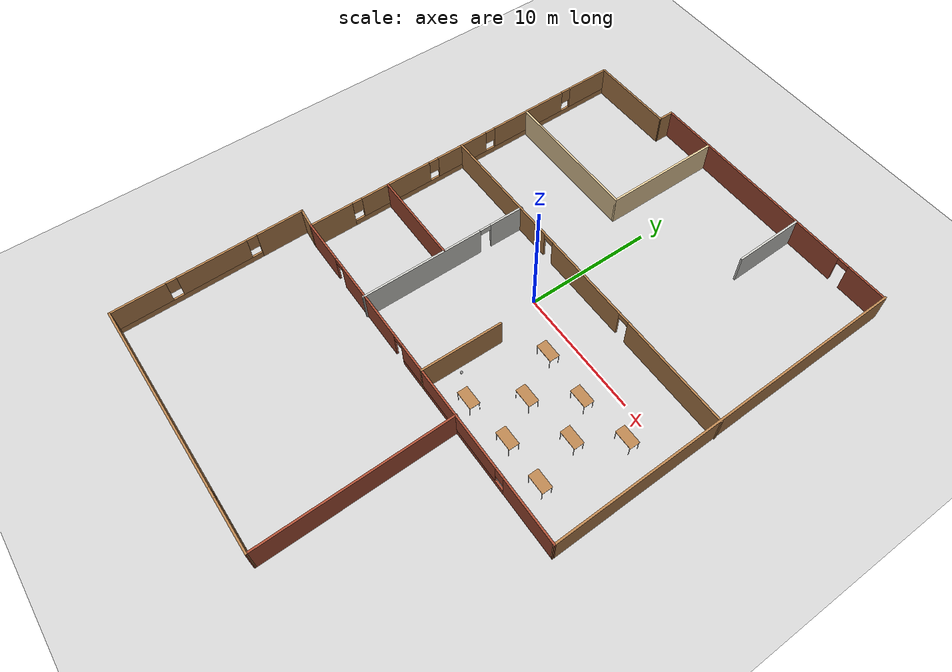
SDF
<sdf version="1.6">
 <world name="default">
  <plugin name="hello" filename="libhello.so"/>
  <light name="sun" type="directional">
   <pose>0 0 10 0 -0 0</pose>
   <diffuse>0.8 0.8 0.8 1</diffuse>
   <specular>0.2 0.2 0.2 1</specular>
   <attenuation>
    <range>1000</range>
    <constant>0.9</constant>
    <linear>0.01</linear>
    <quadratic>0.001</quadratic>
   </attenuation>
   <direction>-0.5 0.1 -0.9</direction>
  </light>
  <model name="ground_plane">
   <static>1</static>
   <link name="link">
    <collision name="collision">
     <geometry><plane><normal>0 0 1</normal><size>100 100</size></plane></geometry>
     <surface>
      <contact><collide_bitmask>65535</collide_bitmask></contact>
      <friction><ode><mu>100</mu><mu2>50</mu2></ode></friction>
     </surface>
    </collision>
    <visual name="visual">
     <cast_shadows>0</cast_shadows>
     <geometry><plane><normal>0 0 1</normal><size>100 100</size></plane></geometry>
     <material>
      <script><uri>file://media/materials/scripts/gazebo.material</uri><name>Gazebo/Grey</name></script>
     </material>
    </visual>
   </link>
  </model>
  <gravity>0 0 -9.8</gravity>
  <magnetic_field>6e-06 2.3e-05 -4.2e-05</magnetic_field>
  <atmosphere type="adiabatic"/>
  <physics name="default_physics" default="0" type="ode">
   <max_step_size>0.001</max_step_size>
   <real_time_factor>1</real_time_factor>
   <real_time_update_rate>1000</real_time_update_rate>
  </physics>
  <scene><ambient>0.4 0.4 0.4 1</ambient><background>0.7 0.7 0.7 1</background><shadows>1</shadows></scene>
  <spherical_coordinates>
   <surface_model>EARTH_WGS84</surface_model>
   <latitude_deg>0</latitude_deg>
   <longitude_deg>0</longitude_deg>
   <elevation>0</elevation>
   <heading_deg>0</heading_deg>
  </spherical_coordinates>
  <model name="myfloor">
   <pose>0.1154 -3.06922 0 0 -0 0</pose>
   <link name="Wall_0">
    <collision name="Wall_0_Collision">
     <geometry><box><size>28.7943 0.15 2.5</size></box></geometry>
     <pose>0 0 1.25 0 -0 0</pose>
    </collision>
    <visual name="Wall_0_Visual">
     <pose>0 0 1.25 0 -0 0</pose>
     <geometry><box><size>28.7943 0.15 2.5</size></box></geometry>
     <material>
      <script><uri>file://media/materials/scripts/gazebo.material</uri><name>Gazebo/Wood</name></script>
      <ambient>1 1 1 1</ambient>
     </material>
     <meta><layer>0</layer></meta>
    </visual>
    <pose>14.9022 7.37878 0 0 -0 -1.55943</pose>
   </link>
   <link name="Wall_1">
    <pose>0.784435 -6.98313 0 0 -0 -3.13874</pose>
    <visual name="Wall_1_Visual_0">
     <pose>-11.8346 0 1.25 0 -0 0</pose>
     <geometry><box><size>5.04202 0.15 2.5</size></box></geometry>
     <material>
      <script><uri>file://media/materials/scripts/gazebo.material</uri><name>Gazebo/Bricks</name></script>
      <ambient>1 1 1 1</ambient>
     </material>
     <meta><layer>0</layer></meta>
    </visual>
    <collision name="Wall_1_Collision_0">
     <geometry><box><size>5.04202 0.15 2.5</size></box></geometry>
     <pose>-11.8346 0 1.25 0 -0 0</pose>
    </collision>
    <visual name="Wall_1_Visual_1">
     <pose>6.38807 0 1.25 0 -0 0</pose>
     <geometry><box><size>6.80433 0.15 2.5</size></box></geometry>
     <material>
      <script><uri>file://media/materials/scripts/gazebo.material</uri><name>Gazebo/Bricks</name></script>
      <ambient>1 1 1 1</ambient>
     </material>
     <meta><layer>0</layer></meta>
    </visual>
    <collision name="Wall_1_Collision_1">
     <geometry><box><size>6.80433 0.15 2.5</size></box></geometry>
     <pose>6.38807 0 1.25 0 -0 0</pose>
    </collision>
    <visual name="Wall_1_Visual_2">
     <pose>12.5229 0 1.25 0 -0 0</pose>
     <geometry><box><size>3.66537 0.15 2.5</size></box></geometry>
     <material>
      <script><uri>file://media/materials/scripts/gazebo.material</uri><name>Gazebo/Bricks</name></script>
      <ambient>1 1 1 1</ambient>
     </material>
     <meta><layer>0</layer></meta>
    </visual>
    <collision name="Wall_1_Collision_2">
     <geometry><box><size>3.66537 0.15 2.5</size></box></geometry>
     <pose>12.5229 0 1.25 0 -0 0</pose>
    </collision>
    <visual name="Wall_1_Visual_3">
     <pose>-3.61384 0 0.25 0 -0 0</pose>
     <geometry><box><size>11.3995 0.15 0.5</size></box></geometry>
     <material>
      <script><uri>file://media/materials/scripts/gazebo.material</uri><name>Gazebo/Bricks</name></script>
      <ambient>1 1 1 1</ambient>
     </material>
     <meta><layer>0</layer></meta>
    </visual>
    <collision name="Wall_1_Collision_3">
     <geometry><box><size>11.3995 0.15 0.5</size></box></geometry>
     <pose>-3.61384 0 0.25 0 -0 0</pose>
    </collision>
    <visual name="Wall_1_Visual_4">
     <pose>-3.21384 0 1.5 0 -0 0</pose>
     <geometry><box><size>10.5995 0.15 2</size></box></geometry>
     <material>
      <script><uri>file://media/materials/scripts/gazebo.material</uri><name>Gazebo/Bricks</name></script>
      <ambient>1 1 1 1</ambient>
     </material>
     <meta><layer>0</layer></meta>
    </visual>
    <collision name="Wall_1_Collision_4">
     <geometry><box><size>10.5995 0.15 2</size></box></geometry>
     <pose>-3.21384 0 1.5 0 -0 0</pose>
    </collision>
    <visual name="Wall_1_Visual_5">
     <pose>-8.91358 0 1.9 0 -0 0</pose>
     <geometry><box><size>0.8 0.15 1.2</size></box></geometry>
     <material>
      <script><uri>file://media/materials/scripts/gazebo.material</uri><name>Gazebo/Bricks</name></script>
      <ambient>1 1 1 1</ambient>
     </material>
     <meta><layer>0</layer></meta>
    </visual>
    <collision name="Wall_1_Collision_5">
     <geometry><box><size>0.8 0.15 1.2</size></box></geometry>
     <pose>-8.91358 0 1.9 0 -0 0</pose>
    </collision>
    <visual name="Wall_1_Visual_6">
     <pose>10.2402 0 2.25 0 -0 0</pose>
     <geometry><box><size>0.9 0.15 0.5</size></box></geometry>
     <material>
      <script><uri>file://media/materials/scripts/gazebo.material</uri><name>Gazebo/Bricks</name></script>
      <ambient>1 1 1 1</ambient>
     </material>
     <meta><layer>0</layer></meta>
    </visual>
    <collision name="Wall_1_Collision_6">
     <geometry><box><size>0.9 0.15 0.5</size></box></geometry>
     <pose>10.2402 0 2.25 0 -0 0</pose>
    </collision>
    <visual name="Wall_1_Visual_7">
     <pose>2.53591 0 2.25 0 -0 0</pose>
     <geometry><box><size>0.9 0.15 0.5</size></box></geometry>
     <material>
      <script><uri>file://media/materials/scripts/gazebo.material</uri><name>Gazebo/Bricks</name></script>
      <ambient>1 1 1 1</ambient>
     </material>
     <meta><layer>0</layer></meta>
    </visual>
    <collision name="Wall_1_Collision_7">
     <geometry><box><size>0.9 0.15 0.5</size></box></geometry>
     <pose>2.53591 0 2.25 0 -0 0</pose>
    </collision>
   </link>
   <link name="Wall_11">
    <collision name="Wall_11_Collision">
     <geometry><box><size>1.71929 0.15 2.5</size></box></geometry>
     <pose>0 0 1.25 0 -0 0</pose>
    </collision>
    <visual name="Wall_11_Visual">
     <pose>0 0 1.25 0 -0 0</pose>
     <geometry><box><size>1.71929 0.15 2.5</size></box></geometry>
     <material>
      <script><uri>file://media/materials/scripts/gazebo.material</uri><name>Gazebo/Wood</name></script>
      <ambient>1 1 1 1</ambient>
     </material>
     <meta><layer>0</layer></meta>
    </visual>
    <pose>-14.2779 -6.95718 0 0 -0 3.05657</pose>
   </link>
   <link name="Wall_12">
    <pose>-14.9328 -14.2951 0 0 -0 -1.55366</pose>
    <visual name="Wall_12_Visual_0">
     <pose>-5.5888 0 1.25 0 -0 0</pose>
     <geometry><box><size>3.78362 0.15 2.5</size></box></geometry>
     <material>
      <script><uri>file://media/materials/scripts/gazebo.material</uri><name>Gazebo/Wood</name></script>
      <ambient>1 1 1 1</ambient>
     </material>
     <meta><layer>0</layer></meta>
    </visual>
    <collision name="Wall_12_Collision_0">
     <geometry><box><size>3.78362 0.15 2.5</size></box></geometry>
     <pose>-5.5888 0 1.25 0 -0 0</pose>
    </collision>
    <visual name="Wall_12_Visual_1">
     <pose>1.89181 0 0.25 0 -0 0</pose>
     <geometry><box><size>11.1776 0.15 0.5</size></box></geometry>
     <material>
      <script><uri>file://media/materials/scripts/gazebo.material</uri><name>Gazebo/Wood</name></script>
      <ambient>1 1 1 1</ambient>
     </material>
     <meta><layer>0</layer></meta>
    </visual>
    <collision name="Wall_12_Collision_1">
     <geometry><box><size>11.1776 0.15 0.5</size></box></geometry>
     <pose>1.89181 0 0.25 0 -0 0</pose>
    </collision>
    <visual name="Wall_12_Visual_2">
     <pose>-0.192467 0 1.5 0 -0 0</pose>
     <geometry><box><size>5.40905 0.15 2</size></box></geometry>
     <material>
      <script><uri>file://media/materials/scripts/gazebo.material</uri><name>Gazebo/Wood</name></script>
      <ambient>1 1 1 1</ambient>
     </material>
     <meta><layer>0</layer></meta>
    </visual>
    <collision name="Wall_12_Collision_2">
     <geometry><box><size>5.40905 0.15 2</size></box></geometry>
     <pose>-0.192467 0 1.5 0 -0 0</pose>
    </collision>
    <visual name="Wall_12_Visual_3">
     <pose>5.39633 0 1.5 0 -0 0</pose>
     <geometry><box><size>4.16855 0.15 2</size></box></geometry>
     <material>
      <script><uri>file://media/materials/scripts/gazebo.material</uri><name>Gazebo/Wood</name></script>
      <ambient>1 1 1 1</ambient>
     </material>
     <meta><layer>0</layer></meta>
    </visual>
    <collision name="Wall_12_Collision_3">
     <geometry><box><size>4.16855 0.15 2</size></box></geometry>
     <pose>5.39633 0 1.5 0 -0 0</pose>
    </collision>
    <visual name="Wall_12_Visual_4">
     <pose>-3.29699 0 1.9 0 -0 0</pose>
     <geometry><box><size>0.8 0.15 1.2</size></box></geometry>
     <material>
      <script><uri>file://media/materials/scripts/gazebo.material</uri><name>Gazebo/Wood</name></script>
      <ambient>1 1 1 1</ambient>
     </material>
     <meta><layer>0</layer></meta>
    </visual>
    <collision name="Wall_12_Collision_4">
     <geometry><box><size>0.8 0.15 1.2</size></box></geometry>
     <pose>-3.29699 0 1.9 0 -0 0</pose>
    </collision>
    <visual name="Wall_12_Visual_5">
     <pose>2.91206 0 1.9 0 -0 0</pose>
     <geometry><box><size>0.8 0.15 1.2</size></box></geometry>
     <material>
      <script><uri>file://media/materials/scripts/gazebo.material</uri><name>Gazebo/Wood</name></script>
      <ambient>1 1 1 1</ambient>
     </material>
     <meta><layer>0</layer></meta>
    </visual>
    <collision name="Wall_12_Collision_5">
     <geometry><box><size>0.8 0.15 1.2</size></box></geometry>
     <pose>2.91206 0 1.9 0 -0 0</pose>
    </collision>
   </link>
   <link name="Wall_13">
    <pose>-4.80096 -21.6461 0 0 -0 0.005348</pose>
    <visual name="Wall_13_Visual_0">
     <pose>-2.48429 0 1.25 0 -0 0</pose>
     <geometry><box><size>15.1916 0.15 2.5</size></box></geometry>
     <material>
      <script><uri>file://media/materials/scripts/gazebo.material</uri><name>Gazebo/Wood</name></script>
      <ambient>1 1 1 1</ambient>
     </material>
     <meta><layer>0</layer></meta>
    </visual>
    <collision name="Wall_13_Collision_0">
     <geometry><box><size>15.1916 0.15 2.5</size></box></geometry>
     <pose>-2.48429 0 1.25 0 -0 0</pose>
    </collision>
    <visual name="Wall_13_Visual_1">
     <pose>7.59582 0 0.25 0 -0 0</pose>
     <geometry><box><size>4.96857 0.15 0.5</size></box></geometry>
     <material>
      <script><uri>file://media/materials/scripts/gazebo.material</uri><name>Gazebo/Wood</name></script>
      <ambient>1 1 1 1</ambient>
     </material>
     <meta><layer>0</layer></meta>
    </visual>
    <collision name="Wall_13_Collision_1">
     <geometry><box><size>4.96857 0.15 0.5</size></box></geometry>
     <pose>7.59582 0 0.25 0 -0 0</pose>
    </collision>
    <visual name="Wall_13_Visual_2">
     <pose>7.99582 0 1.5 0 -0 0</pose>
     <geometry><box><size>4.16857 0.15 2</size></box></geometry>
     <material>
      <script><uri>file://media/materials/scripts/gazebo.material</uri><name>Gazebo/Wood</name></script>
      <ambient>1 1 1 1</ambient>
     </material>
     <meta><layer>0</layer></meta>
    </visual>
    <collision name="Wall_13_Collision_2">
     <geometry><box><size>4.16857 0.15 2</size></box></geometry>
     <pose>7.99582 0 1.5 0 -0 0</pose>
    </collision>
    <visual name="Wall_13_Visual_3">
     <pose>5.51154 0 1.9 0 -0 0</pose>
     <geometry><box><size>0.8 0.15 1.2</size></box></geometry>
     <material>
      <script><uri>file://media/materials/scripts/gazebo.material</uri><name>Gazebo/Wood</name></script>
      <ambient>1 1 1 1</ambient>
     </material>
     <meta><layer>0</layer></meta>
    </visual>
    <collision name="Wall_13_Collision_3">
     <geometry><box><size>0.8 0.15 1.2</size></box></geometry>
     <pose>5.51154 0 1.9 0 -0 0</pose>
    </collision>
   </link>
   <link name="Wall_14">
    <collision name="Wall_14_Collision">
     <geometry><box><size>14.8112 0.15 2.5</size></box></geometry>
     <pose>0 0 1.25 0 -0 0</pose>
    </collision>
    <visual name="Wall_14_Visual">
     <pose>0 0 1.25 0 -0 0</pose>
     <geometry><box><size>14.8112 0.15 2.5</size></box></geometry>
     <material>
      <script><uri>file://media/materials/scripts/gazebo.material</uri><name>Gazebo/Bricks</name></script>
      <ambient>1 1 1 1</ambient>
     </material>
     <meta><layer>0</layer></meta>
    </visual>
    <pose>5.097 -14.2627 0 0 -0 1.58539</pose>
   </link>
   <link name="Wall_16">
    <collision name="Wall_16_Collision">
     <geometry><box><size>7.64035 0.15 2.5</size></box></geometry>
     <pose>0 0 1.25 0 -0 0</pose>
    </collision>
    <visual name="Wall_16_Visual">
     <pose>0 0 1.25 0 -0 0</pose>
     <geometry><box><size>7.64035 0.15 2.5</size></box></geometry>
     <material>
      <script><uri>file://media/materials/scripts/gazebo.material</uri><name>Gazebo/Bricks</name></script>
      <ambient>1 1 1 1</ambient>
     </material>
     <meta><layer>0</layer></meta>
    </visual>
    <pose>-9.77669 -0.512597 0 0 -0 0</pose>
   </link>
   <link name="Wall_18">
    <collision name="Wall_18_Collision">
     <geometry><box><size>5.6083 0.15 2.5</size></box></geometry>
     <pose>0 0 1.25 0 -0 0</pose>
    </collision>
    <visual name="Wall_18_Visual">
     <pose>0 0 1.25 0 -0 0</pose>
     <geometry><box><size>5.6083 0.15 2.5</size></box></geometry>
     <material>
      <script><uri>file://media/materials/scripts/gazebo.material</uri><name>Gazebo/CeilingTiled</name></script>
      <ambient>1 1 1 1</ambient>
     </material>
     <meta><layer>0</layer></meta>
    </visual>
    <pose>6.64857 18.8018 0 0 -0 -1.55119</pose>
   </link>
   <link name="Wall_2">
    <pose>-13.5775 6.64645 0 0 -0 1.57675</pose>
    <visual name="Wall_2_Visual_0">
     <pose>-11.9896 0 1.25 0 -0 0</pose>
     <geometry><box><size>3.51181 0.15 2.5</size></box></geometry>
     <material>
      <script><uri>file://media/materials/scripts/gazebo.material</uri><name>Gazebo/Wood</name></script>
      <ambient>1 1 1 1</ambient>
     </material>
     <meta><layer>0</layer></meta>
    </visual>
    <collision name="Wall_2_Collision_0">
     <geometry><box><size>3.51181 0.15 2.5</size></box></geometry>
     <pose>-11.9896 0 1.25 0 -0 0</pose>
    </collision>
    <visual name="Wall_2_Visual_1">
     <pose>1.75591 0 0.25 0 -0 0</pose>
     <geometry><box><size>23.9792 0.15 0.5</size></box></geometry>
     <material>
      <script><uri>file://media/materials/scripts/gazebo.material</uri><name>Gazebo/Wood</name></script>
      <ambient>1 1 1 1</ambient>
     </material>
     <meta><layer>0</layer></meta>
    </visual>
    <collision name="Wall_2_Collision_1">
     <geometry><box><size>23.9792 0.15 0.5</size></box></geometry>
     <pose>1.75591 0 0.25 0 -0 0</pose>
    </collision>
    <visual name="Wall_2_Visual_2">
     <pose>-6.46373 0 1.5 0 -0 0</pose>
     <geometry><box><size>5.93992 0.15 2</size></box></geometry>
     <material>
      <script><uri>file://media/materials/scripts/gazebo.material</uri><name>Gazebo/Wood</name></script>
      <ambient>1 1 1 1</ambient>
     </material>
     <meta><layer>0</layer></meta>
    </visual>
    <collision name="Wall_2_Collision_2">
     <geometry><box><size>5.93992 0.15 2</size></box></geometry>
     <pose>-6.46373 0 1.5 0 -0 0</pose>
    </collision>
    <visual name="Wall_2_Visual_3">
     <pose>-0.471555 0 1.5 0 -0 0</pose>
     <geometry><box><size>4.44443 0.15 2</size></box></geometry>
     <material>
      <script><uri>file://media/materials/scripts/gazebo.material</uri><name>Gazebo/Wood</name></script>
      <ambient>1 1 1 1</ambient>
     </material>
     <meta><layer>0</layer></meta>
    </visual>
    <collision name="Wall_2_Collision_3">
     <geometry><box><size>4.44443 0.15 2</size></box></geometry>
     <pose>-0.471555 0 1.5 0 -0 0</pose>
    </collision>
    <visual name="Wall_2_Visual_4">
     <pose>5.8964 0 1.5 0 -0 0</pose>
     <geometry><box><size>6.69149 0.15 2</size></box></geometry>
     <material>
      <script><uri>file://media/materials/scripts/gazebo.material</uri><name>Gazebo/Wood</name></script>
      <ambient>1 1 1 1</ambient>
     </material>
     <meta><layer>0</layer></meta>
    </visual>
    <collision name="Wall_2_Collision_4">
     <geometry><box><size>6.69149 0.15 2</size></box></geometry>
     <pose>5.8964 0 1.5 0 -0 0</pose>
    </collision>
    <visual name="Wall_2_Visual_5">
     <pose>11.8938 0 1.5 0 -0 0</pose>
     <geometry><box><size>3.70336 0.15 2</size></box></geometry>
     <material>
      <script><uri>file://media/materials/scripts/gazebo.material</uri><name>Gazebo/Wood</name></script>
      <ambient>1 1 1 1</ambient>
     </material>
     <meta><layer>0</layer></meta>
    </visual>
    <collision name="Wall_2_Collision_5">
     <geometry><box><size>3.70336 0.15 2</size></box></geometry>
     <pose>11.8938 0 1.5 0 -0 0</pose>
    </collision>
    <visual name="Wall_2_Visual_6">
     <pose>-9.83369 0 1.9 0 -0 0</pose>
     <geometry><box><size>0.8 0.15 1.2</size></box></geometry>
     <material>
      <script><uri>file://media/materials/scripts/gazebo.material</uri><name>Gazebo/Wood</name></script>
      <ambient>1 1 1 1</ambient>
     </material>
     <meta><layer>0</layer></meta>
    </visual>
    <collision name="Wall_2_Collision_6">
     <geometry><box><size>0.8 0.15 1.2</size></box></geometry>
     <pose>-9.83369 0 1.9 0 -0 0</pose>
    </collision>
    <visual name="Wall_2_Visual_7">
     <pose>-3.09377 0 1.9 0 -0 0</pose>
     <geometry><box><size>0.8 0.15 1.2</size></box></geometry>
     <material>
      <script><uri>file://media/materials/scripts/gazebo.material</uri><name>Gazebo/Wood</name></script>
      <ambient>1 1 1 1</ambient>
     </material>
     <meta><layer>0</layer></meta>
    </visual>
    <collision name="Wall_2_Collision_7">
     <geometry><box><size>0.8 0.15 1.2</size></box></geometry>
     <pose>-3.09377 0 1.9 0 -0 0</pose>
    </collision>
    <visual name="Wall_2_Visual_8">
     <pose>2.15066 0 1.9 0 -0 0</pose>
     <geometry><box><size>0.8 0.15 1.2</size></box></geometry>
     <material>
      <script><uri>file://media/materials/scripts/gazebo.material</uri><name>Gazebo/Wood</name></script>
      <ambient>1 1 1 1</ambient>
     </material>
     <meta><layer>0</layer></meta>
    </visual>
    <collision name="Wall_2_Collision_8">
     <geometry><box><size>0.8 0.15 1.2</size></box></geometry>
     <pose>2.15066 0 1.9 0 -0 0</pose>
    </collision>
    <visual name="Wall_2_Visual_9">
     <pose>9.64215 0 1.9 0 -0 0</pose>
     <geometry><box><size>0.8 0.15 1.2</size></box></geometry>
     <material>
      <script><uri>file://media/materials/scripts/gazebo.material</uri><name>Gazebo/Wood</name></script>
      <ambient>1 1 1 1</ambient>
     </material>
     <meta><layer>0</layer></meta>
    </visual>
    <collision name="Wall_2_Collision_9">
     <geometry><box><size>0.8 0.15 1.2</size></box></geometry>
     <pose>9.64215 0 1.9 0 -0 0</pose>
    </collision>
   </link>
   <link name="Wall_21">
    <collision name="Wall_21_Collision">
     <geometry><box><size>11.25 0.15 2.5</size></box></geometry>
     <pose>0 0 1.25 0 -0 0</pose>
    </collision>
    <visual name="Wall_21_Visual">
     <pose>0 0 1.25 0 -0 0</pose>
     <geometry><box><size>11.25 0.15 2.5</size></box></geometry>
     <material>
      <script><uri>file://media/materials/scripts/gazebo.material</uri><name>Gazebo/Grey</name></script>
      <ambient>0.921569 0.807843 0.615686 1</ambient>
     </material>
     <meta><layer>0</layer></meta>
    </visual>
    <pose>-8.07887 12.328 0 0 -0 0</pose>
   </link>
   <link name="Wall_22">
    <collision name="Wall_22_Collision">
     <geometry><box><size>9.25 0.15 2.5</size></box></geometry>
     <pose>0 0 1.25 0 -0 0</pose>
    </collision>
    <visual name="Wall_22_Visual">
     <pose>0 0 1.25 0 -0 0</pose>
     <geometry><box><size>9.25 0.15 2.5</size></box></geometry>
     <material>
      <script><uri>file://media/materials/scripts/gazebo.material</uri><name>Gazebo/Grey</name></script>
      <ambient>0.921569 0.807843 0.615686 1</ambient>
     </material>
     <meta><layer>0</layer></meta>
    </visual>
    <pose>-2.52887 16.878 0 0 -0 1.5708</pose>
   </link>
   <link name="Wall_25">
    <collision name="Wall_25_Collision">
     <geometry><box><size>6.38573 0.15 2.5</size></box></geometry>
     <pose>0 0 1.25 0 -0 0</pose>
    </collision>
    <visual name="Wall_25_Visual">
     <pose>0 0 1.25 0 -0 0</pose>
     <geometry><box><size>6.38573 0.15 2.5</size></box></geometry>
     <material>
      <script><uri>file://media/materials/scripts/gazebo.material</uri><name>Gazebo/Wood</name></script>
      <ambient>1 1 1 1</ambient>
     </material>
     <meta><layer>0</layer></meta>
    </visual>
    <pose>1.10457 -3.86749 0 0 -0 1.55789</pose>
   </link>
   <link name="Wall_3">
    <collision name="Wall_3_Collision">
     <geometry><box><size>6.98562 0.15 2.5</size></box></geometry>
     <pose>0 0 1.25 0 -0 0</pose>
    </collision>
    <visual name="Wall_3_Visual">
     <pose>0 0 1.25 0 -0 0</pose>
     <geometry><box><size>6.98562 0.15 2.5</size></box></geometry>
     <material>
      <script><uri>file://media/materials/scripts/gazebo.material</uri><name>Gazebo/Wood</name></script>
      <ambient>1 1 1 1</ambient>
     </material>
     <meta><layer>0</layer></meta>
    </visual>
    <pose>-10.2413 20.3574 0 0 -0 0.011904</pose>
   </link>
   <link name="Wall_4">
    <collision name="Wall_4_Collision">
     <geometry><box><size>1.28919 0.15 2.5</size></box></geometry>
     <pose>0 0 1.25 0 -0 0</pose>
    </collision>
    <visual name="Wall_4_Visual">
     <pose>0 0 1.25 0 -0 0</pose>
     <geometry><box><size>1.28919 0.15 2.5</size></box></geometry>
     <material>
      <script><uri>file://media/materials/scripts/gazebo.material</uri><name>Gazebo/Wood</name></script>
      <ambient>1 1 1 1</ambient>
     </material>
     <meta><layer>0</layer></meta>
    </visual>
    <pose>-6.82372 20.9677 0 0 -0 1.5708</pose>
   </link>
   <link name="Wall_5">
    <pose>3.95789 21.578 0 0 -0 0.003774</pose>
    <visual name="Wall_5_Visual_0">
     <pose>-2.08756 0 1.25 0 -0 0</pose>
     <geometry><box><size>17.5382 0.15 2.5</size></box></geometry>
     <material>
      <script><uri>file://media/materials/scripts/gazebo.material</uri><name>Gazebo/Bricks</name></script>
      <ambient>1 1 1 1</ambient>
     </material>
     <meta><layer>0</layer></meta>
    </visual>
    <collision name="Wall_5_Collision_0">
     <geometry><box><size>17.5382 0.15 2.5</size></box></geometry>
     <pose>-2.08756 0 1.25 0 -0 0</pose>
    </collision>
    <visual name="Wall_5_Visual_1">
     <pose>9.21912 0 1.25 0 -0 0</pose>
     <geometry><box><size>3.27512 0.15 2.5</size></box></geometry>
     <material>
      <script><uri>file://media/materials/scripts/gazebo.material</uri><name>Gazebo/Bricks</name></script>
      <ambient>1 1 1 1</ambient>
     </material>
     <meta><layer>0</layer></meta>
    </visual>
    <collision name="Wall_5_Collision_1">
     <geometry><box><size>3.27512 0.15 2.5</size></box></geometry>
     <pose>9.21912 0 1.25 0 -0 0</pose>
    </collision>
    <visual name="Wall_5_Visual_2">
     <pose>7.13157 0 2.25 0 -0 0</pose>
     <geometry><box><size>0.9 0.15 0.5</size></box></geometry>
     <material>
      <script><uri>file://media/materials/scripts/gazebo.material</uri><name>Gazebo/Bricks</name></script>
      <ambient>1 1 1 1</ambient>
     </material>
     <meta><layer>0</layer></meta>
    </visual>
    <collision name="Wall_5_Collision_2">
     <geometry><box><size>0.9 0.15 0.5</size></box></geometry>
     <pose>7.13157 0 2.25 0 -0 0</pose>
    </collision>
   </link>
   <link name="Wall_7">
    <pose>0.703065 6.19891 0 0 -0 0.002849</pose>
    <visual name="Wall_7_Visual_0">
     <pose>-9.05812 0 1.25 0 -0 0</pose>
     <geometry><box><size>10.595 0.15 2.5</size></box></geometry>
     <material>
      <script><uri>file://media/materials/scripts/gazebo.material</uri><name>Gazebo/Wood</name></script>
      <ambient>1 1 1 1</ambient>
     </material>
     <meta><layer>0</layer></meta>
    </visual>
    <collision name="Wall_7_Collision_0">
     <geometry><box><size>10.595 0.15 2.5</size></box></geometry>
     <pose>-9.05812 0 1.25 0 -0 0</pose>
    </collision>
    <visual name="Wall_7_Visual_1">
     <pose>0.808893 0 1.25 0 -0 0</pose>
     <geometry><box><size>7.33905 0.15 2.5</size></box></geometry>
     <material>
      <script><uri>file://media/materials/scripts/gazebo.material</uri><name>Gazebo/Wood</name></script>
      <ambient>1 1 1 1</ambient>
     </material>
     <meta><layer>0</layer></meta>
    </visual>
    <collision name="Wall_7_Collision_1">
     <geometry><box><size>7.33905 0.15 2.5</size></box></geometry>
     <pose>0.808893 0 1.25 0 -0 0</pose>
    </collision>
    <visual name="Wall_7_Visual_2">
     <pose>9.86701 0 1.25 0 -0 0</pose>
     <geometry><box><size>8.97718 0.15 2.5</size></box></geometry>
     <material>
      <script><uri>file://media/materials/scripts/gazebo.material</uri><name>Gazebo/Wood</name></script>
      <ambient>1 1 1 1</ambient>
     </material>
     <meta><layer>0</layer></meta>
    </visual>
    <collision name="Wall_7_Collision_2">
     <geometry><box><size>8.97718 0.15 2.5</size></box></geometry>
     <pose>9.86701 0 1.25 0 -0 0</pose>
    </collision>
    <visual name="Wall_7_Visual_3">
     <pose>-3.31063 0 2.25 0 -0 0</pose>
     <geometry><box><size>0.9 0.15 0.5</size></box></geometry>
     <material>
      <script><uri>file://media/materials/scripts/gazebo.material</uri><name>Gazebo/Wood</name></script>
      <ambient>1 1 1 1</ambient>
     </material>
     <meta><layer>0</layer></meta>
    </visual>
    <collision name="Wall_7_Collision_3">
     <geometry><box><size>0.9 0.15 0.5</size></box></geometry>
     <pose>-3.31063 0 2.25 0 -0 0</pose>
    </collision>
    <visual name="Wall_7_Visual_4">
     <pose>4.92842 0 2.25 0 -0 0</pose>
     <geometry><box><size>0.9 0.15 0.5</size></box></geometry>
     <material>
      <script><uri>file://media/materials/scripts/gazebo.material</uri><name>Gazebo/Wood</name></script>
      <ambient>1 1 1 1</ambient>
     </material>
     <meta><layer>0</layer></meta>
    </visual>
    <collision name="Wall_7_Collision_4">
     <geometry><box><size>0.9 0.15 0.5</size></box></geometry>
     <pose>4.92842 0 2.25 0 -0 0</pose>
    </collision>
   </link>
   <link name="Wall_9">
    <pose>-6.01001 -0.432795 0 0 -0 -1.5708</pose>
    <visual name="Wall_9_Visual_0">
     <pose>-5.32444 0 1.25 0 -0 0</pose>
     <geometry><box><size>2.84615 0.15 2.5</size></box></geometry>
     <material>
      <script><uri>file://media/materials/scripts/gazebo.material</uri><name>Gazebo/CeilingTiled</name></script>
      <ambient>1 1 1 1</ambient>
     </material>
     <meta><layer>0</layer></meta>
    </visual>
    <collision name="Wall_9_Collision_0">
     <geometry><box><size>2.84615 0.15 2.5</size></box></geometry>
     <pose>-5.32444 0 1.25 0 -0 0</pose>
    </collision>
    <visual name="Wall_9_Visual_1">
     <pose>1.87308 0 1.25 0 -0 0</pose>
     <geometry><box><size>9.74888 0.15 2.5</size></box></geometry>
     <material>
      <script><uri>file://media/materials/scripts/gazebo.material</uri><name>Gazebo/CeilingTiled</name></script>
      <ambient>1 1 1 1</ambient>
     </material>
     <meta><layer>0</layer></meta>
    </visual>
    <collision name="Wall_9_Collision_1">
     <geometry><box><size>9.74888 0.15 2.5</size></box></geometry>
     <pose>1.87308 0 1.25 0 -0 0</pose>
    </collision>
    <visual name="Wall_9_Visual_2">
     <pose>-3.45136 0 2.25 0 -0 0</pose>
     <geometry><box><size>0.9 0.15 0.5</size></box></geometry>
     <material>
      <script><uri>file://media/materials/scripts/gazebo.material</uri><name>Gazebo/CeilingTiled</name></script>
      <ambient>1 1 1 1</ambient>
     </material>
     <meta><layer>0</layer></meta>
    </visual>
    <collision name="Wall_9_Collision_2">
     <geometry><box><size>0.9 0.15 0.5</size></box></geometry>
     <pose>-3.45136 0 2.25 0 -0 0</pose>
    </collision>
   </link>
   <static>1</static>
  </model>
  <model name="table">
   <static>1</static>
   <link name="link">
    <collision name="surface">
     <pose>0 0 1 0 -0 0</pose>
     <geometry><box><size>1.5 0.8 0.03</size></box></geometry>
     <surface><friction><ode><mu>0.6</mu><mu2>0.6</mu2></ode></friction></surface>
    </collision>
    <visual name="visual1">
     <pose>0 0 1 0 -0 0</pose>
     <geometry><box><size>1.5 0.8 0.03</size></box></geometry>
     <material>
      <script><uri>file://media/materials/scripts/gazebo.material</uri><name>Gazebo/Wood</name></script>
     </material>
    </visual>
    <collision name="front_left_leg">
     <pose>0.68 0.38 0.5 0 -0 0</pose>
     <geometry><cylinder><radius>0.02</radius><length>1</length></cylinder></geometry>
    </collision>
    <visual name="front_left_leg">
     <pose>0.68 0.38 0.5 0 -0 0</pose>
     <geometry><cylinder><radius>0.02</radius><length>1</length></cylinder></geometry>
     <material>
      <script><uri>file://media/materials/scripts/gazebo.material</uri><name>Gazebo/Grey</name></script>
     </material>
    </visual>
    <collision name="front_right_leg">
     <pose>0.68 -0.38 0.5 0 -0 0</pose>
     <geometry><cylinder><radius>0.02</radius><length>1</length></cylinder></geometry>
    </collision>
    <visual name="front_right_leg">
     <pose>0.68 -0.38 0.5 0 -0 0</pose>
     <geometry><cylinder><radius>0.02</radius><length>1</length></cylinder></geometry>
     <material>
      <script><uri>file://media/materials/scripts/gazebo.material</uri><name>Gazebo/Grey</name></script>
     </material>
    </visual>
    <collision name="back_right_leg">
     <pose>-0.68 -0.38 0.5 0 -0 0</pose>
     <geometry><cylinder><radius>0.02</radius><length>1</length></cylinder></geometry>
    </collision>
    <visual name="back_right_leg">
     <pose>-0.68 -0.38 0.5 0 -0 0</pose>
     <geometry><cylinder><radius>0.02</radius><length>1</length></cylinder></geometry>
     <material>
      <script><uri>file://media/materials/scripts/gazebo.material</uri><name>Gazebo/Grey</name></script>
     </material>
    </visual>
    <collision name="back_left_leg">
     <pose>-0.68 0.38 0.5 0 -0 0</pose>
     <geometry><cylinder><radius>0.02</radius><length>1</length></cylinder></geometry>
    </collision>
    <visual name="back_left_leg">
     <pose>-0.68 0.38 0.5 0 -0 0</pose>
     <geometry><cylinder><radius>0.02</radius><length>1</length></cylinder></geometry>
     <material>
      <script><uri>file://media/materials/scripts/gazebo.material</uri><name>Gazebo/Grey</name></script>
     </material>
    </visual>
   </link>
   <pose>11.2222 -7.96179 0 0 -0 0</pose>
  </model>
  <model name="table_0">
   <static>1</static>
   <link name="link">
    <collision name="surface">
     <pose>0 0 1 0 -0 0</pose>
     <geometry><box><size>1.5 0.8 0.03</size></box></geometry>
     <surface><friction><ode><mu>0.6</mu><mu2>0.6</mu2></ode></friction></surface>
    </collision>
    <visual name="visual1">
     <pose>0 0 1 0 -0 0</pose>
     <geometry><box><size>1.5 0.8 0.03</size></box></geometry>
     <material>
      <script><uri>file://media/materials/scripts/gazebo.material</uri><name>Gazebo/Wood</name></script>
     </material>
    </visual>
    <collision name="front_left_leg">
     <pose>0.68 0.38 0.5 0 -0 0</pose>
     <geometry><cylinder><radius>0.02</radius><length>1</length></cylinder></geometry>
    </collision>
    <visual name="front_left_leg">
     <pose>0.68 0.38 0.5 0 -0 0</pose>
     <geometry><cylinder><radius>0.02</radius><length>1</length></cylinder></geometry>
     <material>
      <script><uri>file://media/materials/scripts/gazebo.material</uri><name>Gazebo/Grey</name></script>
     </material>
    </visual>
    <collision name="front_right_leg">
     <pose>0.68 -0.38 0.5 0 -0 0</pose>
     <geometry><cylinder><radius>0.02</radius><length>1</length></cylinder></geometry>
    </collision>
    <visual name="front_right_leg">
     <pose>0.68 -0.38 0.5 0 -0 0</pose>
     <geometry><cylinder><radius>0.02</radius><length>1</length></cylinder></geometry>
     <material>
      <script><uri>file://media/materials/scripts/gazebo.material</uri><name>Gazebo/Grey</name></script>
     </material>
    </visual>
    <collision name="back_right_leg">
     <pose>-0.68 -0.38 0.5 0 -0 0</pose>
     <geometry><cylinder><radius>0.02</radius><length>1</length></cylinder></geometry>
    </collision>
    <visual name="back_right_leg">
     <pose>-0.68 -0.38 0.5 0 -0 0</pose>
     <geometry><cylinder><radius>0.02</radius><length>1</length></cylinder></geometry>
     <material>
      <script><uri>file://media/materials/scripts/gazebo.material</uri><name>Gazebo/Grey</name></script>
     </material>
    </visual>
    <collision name="back_left_leg">
     <pose>-0.68 0.38 0.5 0 -0 0</pose>
     <geometry><cylinder><radius>0.02</radius><length>1</length></cylinder></geometry>
    </collision>
    <visual name="back_left_leg">
     <pose>-0.68 0.38 0.5 0 -0 0</pose>
     <geometry><cylinder><radius>0.02</radius><length>1</length></cylinder></geometry>
     <material>
      <script><uri>file://media/materials/scripts/gazebo.material</uri><name>Gazebo/Grey</name></script>
     </material>
    </visual>
   </link>
   <pose>7.70287 -7.91999 0 0 -0 0</pose>
  </model>
  <model name="table_1">
   <static>1</static>
   <link name="link">
    <collision name="surface">
     <pose>0 0 1 0 -0 0</pose>
     <geometry><box><size>1.5 0.8 0.03</size></box></geometry>
     <surface><friction><ode><mu>0.6</mu><mu2>0.6</mu2></ode></friction></surface>
    </collision>
    <visual name="visual1">
     <pose>0 0 1 0 -0 0</pose>
     <geometry><box><size>1.5 0.8 0.03</size></box></geometry>
     <material>
      <script><uri>file://media/materials/scripts/gazebo.material</uri><name>Gazebo/Wood</name></script>
     </material>
    </visual>
    <collision name="front_left_leg">
     <pose>0.68 0.38 0.5 0 -0 0</pose>
     <geometry><cylinder><radius>0.02</radius><length>1</length></cylinder></geometry>
    </collision>
    <visual name="front_left_leg">
     <pose>0.68 0.38 0.5 0 -0 0</pose>
     <geometry><cylinder><radius>0.02</radius><length>1</length></cylinder></geometry>
     <material>
      <script><uri>file://media/materials/scripts/gazebo.material</uri><name>Gazebo/Grey</name></script>
     </material>
    </visual>
    <collision name="front_right_leg">
     <pose>0.68 -0.38 0.5 0 -0 0</pose>
     <geometry><cylinder><radius>0.02</radius><length>1</length></cylinder></geometry>
    </collision>
    <visual name="front_right_leg">
     <pose>0.68 -0.38 0.5 0 -0 0</pose>
     <geometry><cylinder><radius>0.02</radius><length>1</length></cylinder></geometry>
     <material>
      <script><uri>file://media/materials/scripts/gazebo.material</uri><name>Gazebo/Grey</name></script>
     </material>
    </visual>
    <collision name="back_right_leg">
     <pose>-0.68 -0.38 0.5 0 -0 0</pose>
     <geometry><cylinder><radius>0.02</radius><length>1</length></cylinder></geometry>
    </collision>
    <visual name="back_right_leg">
     <pose>-0.68 -0.38 0.5 0 -0 0</pose>
     <geometry><cylinder><radius>0.02</radius><length>1</length></cylinder></geometry>
     <material>
      <script><uri>file://media/materials/scripts/gazebo.material</uri><name>Gazebo/Grey</name></script>
     </material>
    </visual>
    <collision name="back_left_leg">
     <pose>-0.68 0.38 0.5 0 -0 0</pose>
     <geometry><cylinder><radius>0.02</radius><length>1</length></cylinder></geometry>
    </collision>
    <visual name="back_left_leg">
     <pose>-0.68 0.38 0.5 0 -0 0</pose>
     <geometry><cylinder><radius>0.02</radius><length>1</length></cylinder></geometry>
     <material>
      <script><uri>file://media/materials/scripts/gazebo.material</uri><name>Gazebo/Grey</name></script>
     </material>
    </visual>
   </link>
   <pose>3.93198 -8.3054 0 0 -0 0</pose>
  </model>
  <model name="table_2">
   <static>1</static>
   <link name="link">
    <collision name="surface">
     <pose>0 0 1 0 -0 0</pose>
     <geometry><box><size>1.5 0.8 0.03</size></box></geometry>
     <surface><friction><ode><mu>0.6</mu><mu2>0.6</mu2></ode></friction></surface>
    </collision>
    <visual name="visual1">
     <pose>0 0 1 0 -0 0</pose>
     <geometry><box><size>1.5 0.8 0.03</size></box></geometry>
     <material>
      <script><uri>file://media/materials/scripts/gazebo.material</uri><name>Gazebo/Wood</name></script>
     </material>
    </visual>
    <collision name="front_left_leg">
     <pose>0.68 0.38 0.5 0 -0 0</pose>
     <geometry><cylinder><radius>0.02</radius><length>1</length></cylinder></geometry>
    </collision>
    <visual name="front_left_leg">
     <pose>0.68 0.38 0.5 0 -0 0</pose>
     <geometry><cylinder><radius>0.02</radius><length>1</length></cylinder></geometry>
     <material>
      <script><uri>file://media/materials/scripts/gazebo.material</uri><name>Gazebo/Grey</name></script>
     </material>
    </visual>
    <collision name="front_right_leg">
     <pose>0.68 -0.38 0.5 0 -0 0</pose>
     <geometry><cylinder><radius>0.02</radius><length>1</length></cylinder></geometry>
    </collision>
    <visual name="front_right_leg">
     <pose>0.68 -0.38 0.5 0 -0 0</pose>
     <geometry><cylinder><radius>0.02</radius><length>1</length></cylinder></geometry>
     <material>
      <script><uri>file://media/materials/scripts/gazebo.material</uri><name>Gazebo/Grey</name></script>
     </material>
    </visual>
    <collision name="back_right_leg">
     <pose>-0.68 -0.38 0.5 0 -0 0</pose>
     <geometry><cylinder><radius>0.02</radius><length>1</length></cylinder></geometry>
    </collision>
    <visual name="back_right_leg">
     <pose>-0.68 -0.38 0.5 0 -0 0</pose>
     <geometry><cylinder><radius>0.02</radius><length>1</length></cylinder></geometry>
     <material>
      <script><uri>file://media/materials/scripts/gazebo.material</uri><name>Gazebo/Grey</name></script>
     </material>
    </visual>
    <collision name="back_left_leg">
     <pose>-0.68 0.38 0.5 0 -0 0</pose>
     <geometry><cylinder><radius>0.02</radius><length>1</length></cylinder></geometry>
    </collision>
    <visual name="back_left_leg">
     <pose>-0.68 0.38 0.5 0 -0 0</pose>
     <geometry><cylinder><radius>0.02</radius><length>1</length></cylinder></geometry>
     <material>
      <script><uri>file://media/materials/scripts/gazebo.material</uri><name>Gazebo/Grey</name></script>
     </material>
    </visual>
   </link>
   <pose>10.0602 -4.55625 0 0 -0 0</pose>
  </model>
  <model name="table_3">
   <static>1</static>
   <link name="link">
    <collision name="surface">
     <pose>0 0 1 0 -0 0</pose>
     <geometry><box><size>1.5 0.8 0.03</size></box></geometry>
     <surface><friction><ode><mu>0.6</mu><mu2>0.6</mu2></ode></friction></surface>
    </collision>
    <visual name="visual1">
     <pose>0 0 1 0 -0 0</pose>
     <geometry><box><size>1.5 0.8 0.03</size></box></geometry>
     <material>
      <script><uri>file://media/materials/scripts/gazebo.material</uri><name>Gazebo/Wood</name></script>
     </material>
    </visual>
    <collision name="front_left_leg">
     <pose>0.68 0.38 0.5 0 -0 0</pose>
     <geometry><cylinder><radius>0.02</radius><length>1</length></cylinder></geometry>
    </collision>
    <visual name="front_left_leg">
     <pose>0.68 0.38 0.5 0 -0 0</pose>
     <geometry><cylinder><radius>0.02</radius><length>1</length></cylinder></geometry>
     <material>
      <script><uri>file://media/materials/scripts/gazebo.material</uri><name>Gazebo/Grey</name></script>
     </material>
    </visual>
    <collision name="front_right_leg">
     <pose>0.68 -0.38 0.5 0 -0 0</pose>
     <geometry><cylinder><radius>0.02</radius><length>1</length></cylinder></geometry>
    </collision>
    <visual name="front_right_leg">
     <pose>0.68 -0.38 0.5 0 -0 0</pose>
     <geometry><cylinder><radius>0.02</radius><length>1</length></cylinder></geometry>
     <material>
      <script><uri>file://media/materials/scripts/gazebo.material</uri><name>Gazebo/Grey</name></script>
     </material>
    </visual>
    <collision name="back_right_leg">
     <pose>-0.68 -0.38 0.5 0 -0 0</pose>
     <geometry><cylinder><radius>0.02</radius><length>1</length></cylinder></geometry>
    </collision>
    <visual name="back_right_leg">
     <pose>-0.68 -0.38 0.5 0 -0 0</pose>
     <geometry><cylinder><radius>0.02</radius><length>1</length></cylinder></geometry>
     <material>
      <script><uri>file://media/materials/scripts/gazebo.material</uri><name>Gazebo/Grey</name></script>
     </material>
    </visual>
    <collision name="back_left_leg">
     <pose>-0.68 0.38 0.5 0 -0 0</pose>
     <geometry><cylinder><radius>0.02</radius><length>1</length></cylinder></geometry>
    </collision>
    <visual name="back_left_leg">
     <pose>-0.68 0.38 0.5 0 -0 0</pose>
     <geometry><cylinder><radius>0.02</radius><length>1</length></cylinder></geometry>
     <material>
      <script><uri>file://media/materials/scripts/gazebo.material</uri><name>Gazebo/Grey</name></script>
     </material>
    </visual>
   </link>
   <pose>6.01851 -5.10524 0 0 -0 0</pose>
  </model>
  <model name="table_4">
   <static>1</static>
   <link name="link">
    <collision name="surface">
     <pose>0 0 1 0 -0 0</pose>
     <geometry><box><size>1.5 0.8 0.03</size></box></geometry>
     <surface><friction><ode><mu>0.6</mu><mu2>0.6</mu2></ode></friction></surface>
    </collision>
    <visual name="visual1">
     <pose>0 0 1 0 -0 0</pose>
     <geometry><box><size>1.5 0.8 0.03</size></box></geometry>
     <material>
      <script><uri>file://media/materials/scripts/gazebo.material</uri><name>Gazebo/Wood</name></script>
     </material>
    </visual>
    <collision name="front_left_leg">
     <pose>0.68 0.38 0.5 0 -0 0</pose>
     <geometry><cylinder><radius>0.02</radius><length>1</length></cylinder></geometry>
    </collision>
    <visual name="front_left_leg">
     <pose>0.68 0.38 0.5 0 -0 0</pose>
     <geometry><cylinder><radius>0.02</radius><length>1</length></cylinder></geometry>
     <material>
      <script><uri>file://media/materials/scripts/gazebo.material</uri><name>Gazebo/Grey</name></script>
     </material>
    </visual>
    <collision name="front_right_leg">
     <pose>0.68 -0.38 0.5 0 -0 0</pose>
     <geometry><cylinder><radius>0.02</radius><length>1</length></cylinder></geometry>
    </collision>
    <visual name="front_right_leg">
     <pose>0.68 -0.38 0.5 0 -0 0</pose>
     <geometry><cylinder><radius>0.02</radius><length>1</length></cylinder></geometry>
     <material>
      <script><uri>file://media/materials/scripts/gazebo.material</uri><name>Gazebo/Grey</name></script>
     </material>
    </visual>
    <collision name="back_right_leg">
     <pose>-0.68 -0.38 0.5 0 -0 0</pose>
     <geometry><cylinder><radius>0.02</radius><length>1</length></cylinder></geometry>
    </collision>
    <visual name="back_right_leg">
     <pose>-0.68 -0.38 0.5 0 -0 0</pose>
     <geometry><cylinder><radius>0.02</radius><length>1</length></cylinder></geometry>
     <material>
      <script><uri>file://media/materials/scripts/gazebo.material</uri><name>Gazebo/Grey</name></script>
     </material>
    </visual>
    <collision name="back_left_leg">
     <pose>-0.68 0.38 0.5 0 -0 0</pose>
     <geometry><cylinder><radius>0.02</radius><length>1</length></cylinder></geometry>
    </collision>
    <visual name="back_left_leg">
     <pose>-0.68 0.38 0.5 0 -0 0</pose>
     <geometry><cylinder><radius>0.02</radius><length>1</length></cylinder></geometry>
     <material>
      <script><uri>file://media/materials/scripts/gazebo.material</uri><name>Gazebo/Grey</name></script>
     </material>
    </visual>
   </link>
   <pose>12.0865 -1.68887 0 0 -0 0</pose>
  </model>
  <model name="table_5">
   <static>1</static>
   <link name="link">
    <collision name="surface">
     <pose>0 0 1 0 -0 0</pose>
     <geometry><box><size>1.5 0.8 0.03</size></box></geometry>
     <surface><friction><ode><mu>0.6</mu><mu2>0.6</mu2></ode></friction></surface>
    </collision>
    <visual name="visual1">
     <pose>0 0 1 0 -0 0</pose>
     <geometry><box><size>1.5 0.8 0.03</size></box></geometry>
     <material>
      <script><uri>file://media/materials/scripts/gazebo.material</uri><name>Gazebo/Wood</name></script>
     </material>
    </visual>
    <collision name="front_left_leg">
     <pose>0.68 0.38 0.5 0 -0 0</pose>
     <geometry><cylinder><radius>0.02</radius><length>1</length></cylinder></geometry>
    </collision>
    <visual name="front_left_leg">
     <pose>0.68 0.38 0.5 0 -0 0</pose>
     <geometry><cylinder><radius>0.02</radius><length>1</length></cylinder></geometry>
     <material>
      <script><uri>file://media/materials/scripts/gazebo.material</uri><name>Gazebo/Grey</name></script>
     </material>
    </visual>
    <collision name="front_right_leg">
     <pose>0.68 -0.38 0.5 0 -0 0</pose>
     <geometry><cylinder><radius>0.02</radius><length>1</length></cylinder></geometry>
    </collision>
    <visual name="front_right_leg">
     <pose>0.68 -0.38 0.5 0 -0 0</pose>
     <geometry><cylinder><radius>0.02</radius><length>1</length></cylinder></geometry>
     <material>
      <script><uri>file://media/materials/scripts/gazebo.material</uri><name>Gazebo/Grey</name></script>
     </material>
    </visual>
    <collision name="back_right_leg">
     <pose>-0.68 -0.38 0.5 0 -0 0</pose>
     <geometry><cylinder><radius>0.02</radius><length>1</length></cylinder></geometry>
    </collision>
    <visual name="back_right_leg">
     <pose>-0.68 -0.38 0.5 0 -0 0</pose>
     <geometry><cylinder><radius>0.02</radius><length>1</length></cylinder></geometry>
     <material>
      <script><uri>file://media/materials/scripts/gazebo.material</uri><name>Gazebo/Grey</name></script>
     </material>
    </visual>
    <collision name="back_left_leg">
     <pose>-0.68 0.38 0.5 0 -0 0</pose>
     <geometry><cylinder><radius>0.02</radius><length>1</length></cylinder></geometry>
    </collision>
    <visual name="back_left_leg">
     <pose>-0.68 0.38 0.5 0 -0 0</pose>
     <geometry><cylinder><radius>0.02</radius><length>1</length></cylinder></geometry>
     <material>
      <script><uri>file://media/materials/scripts/gazebo.material</uri><name>Gazebo/Grey</name></script>
     </material>
    </visual>
   </link>
   <pose>8.14481 -2.21593 0 0 -0 0</pose>
  </model>
  <model name="table_6">
   <static>1</static>
   <link name="link">
    <collision name="surface">
     <pose>0 0 1 0 -0 0</pose>
     <geometry><box><size>1.5 0.8 0.03</size></box></geometry>
     <surface><friction><ode><mu>0.6</mu><mu2>0.6</mu2></ode></friction></surface>
    </collision>
    <visual name="visual1">
     <pose>0 0 1 0 -0 0</pose>
     <geometry><box><size>1.5 0.8 0.03</size></box></geometry>
     <material>
      <script><uri>file://media/materials/scripts/gazebo.material</uri><name>Gazebo/Wood</name></script>
     </material>
    </visual>
    <collision name="front_left_leg">
     <pose>0.68 0.38 0.5 0 -0 0</pose>
     <geometry><cylinder><radius>0.02</radius><length>1</length></cylinder></geometry>
    </collision>
    <visual name="front_left_leg">
     <pose>0.68 0.38 0.5 0 -0 0</pose>
     <geometry><cylinder><radius>0.02</radius><length>1</length></cylinder></geometry>
     <material>
      <script><uri>file://media/materials/scripts/gazebo.material</uri><name>Gazebo/Grey</name></script>
     </material>
    </visual>
    <collision name="front_right_leg">
     <pose>0.68 -0.38 0.5 0 -0 0</pose>
     <geometry><cylinder><radius>0.02</radius><length>1</length></cylinder></geometry>
    </collision>
    <visual name="front_right_leg">
     <pose>0.68 -0.38 0.5 0 -0 0</pose>
     <geometry><cylinder><radius>0.02</radius><length>1</length></cylinder></geometry>
     <material>
      <script><uri>file://media/materials/scripts/gazebo.material</uri><name>Gazebo/Grey</name></script>
     </material>
    </visual>
    <collision name="back_right_leg">
     <pose>-0.68 -0.38 0.5 0 -0 0</pose>
     <geometry><cylinder><radius>0.02</radius><length>1</length></cylinder></geometry>
    </collision>
    <visual name="back_right_leg">
     <pose>-0.68 -0.38 0.5 0 -0 0</pose>
     <geometry><cylinder><radius>0.02</radius><length>1</length></cylinder></geometry>
     <material>
      <script><uri>file://media/materials/scripts/gazebo.material</uri><name>Gazebo/Grey</name></script>
     </material>
    </visual>
    <collision name="back_left_leg">
     <pose>-0.68 0.38 0.5 0 -0 0</pose>
     <geometry><cylinder><radius>0.02</radius><length>1</length></cylinder></geometry>
    </collision>
    <visual name="back_left_leg">
     <pose>-0.68 0.38 0.5 0 -0 0</pose>
     <geometry><cylinder><radius>0.02</radius><length>1</length></cylinder></geometry>
     <material>
      <script><uri>file://media/materials/scripts/gazebo.material</uri><name>Gazebo/Grey</name></script>
     </material>
    </visual>
   </link>
   <pose>4.15766 -1.96196 0 0 -0 0</pose>
  </model>
  <model name="my_ball">
   <link name="link_0">
    <inertial>
     <mass>1</mass>
     <inertia><ixx>0.1</ixx><ixy>0</ixy><ixz>0</ixz><iyy>0.1</iyy><iyz>0</iyz><izz>0.1</izz></inertia>
    </inertial>
    <visual name="visual">
     <geometry><sphere><radius>0.1</radius></sphere></geometry>
     <material>
      <lighting>1</lighting>
      <script><uri>file://media/materials/scripts/gazebo.material</uri><name>Gazebo/Grey</name></script>
      <shader type="pixel"><normal_map>__default__</normal_map></shader>
      <ambient>1 1 1 1</ambient>
      <diffuse>1 1 1 1</diffuse>
      <specular>1 1 1 1</specular>
      <emissive>1 1 1 1</emissive>
     </material>
    </visual>
    <collision name="collision">
     <geometry><sphere><radius>0.1</radius></sphere></geometry>
     <surface>
      <friction>
       <ode><mu>1</mu><mu2>1</mu2><fdir1>0 0 0</fdir1><slip1>0</slip1><slip2>0</slip2></ode>
       <torsional>
        <coefficient>1</coefficient>
        <patch_radius>0</patch_radius>
        <surface_radius>0</surface_radius>
        <use_patch_radius>1</use_patch_radius>
        <ode><slip>0</slip></ode>
       </torsional>
      </friction>
      <bounce><restitution_coefficient>0</restitution_coefficient><threshold>1e+06</threshold></bounce>
      <contact>
       <collide_without_contact>0</collide_without_contact>
       <collide_without_contact_bitmask>1</collide_without_contact_bitmask>
       <collide_bitmask>1</collide_bitmask>
       <ode>
        <soft_cfm>0</soft_cfm>
        <soft_erp>0.2</soft_erp>
        <kp>1e+13</kp>
        <kd>1</kd>
        <max_vel>0.01</max_vel>
        <min_depth>0</min_depth>
       </ode>
       <bullet>
        <split_impulse>1</split_impulse>
        <split_impulse_penetration_threshold>-0.01</split_impulse_penetration_threshold>
        <soft_cfm>0</soft_cfm>
        <soft_erp>0.2</soft_erp>
        <kp>1e+13</kp>
        <kd>1</kd>
       </bullet>
      </contact>
     </surface>
    </collision>
   </link>
   <static>0</static>
   <pose>1.70656 -7.37293 0.1 0 -0 0</pose>
  </model>
 </world>
</sdf>
